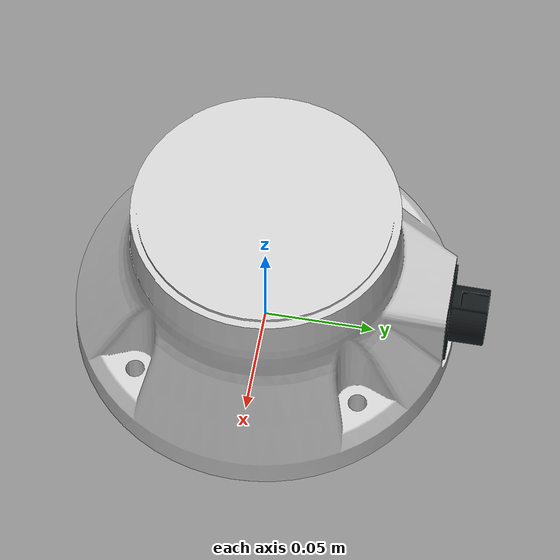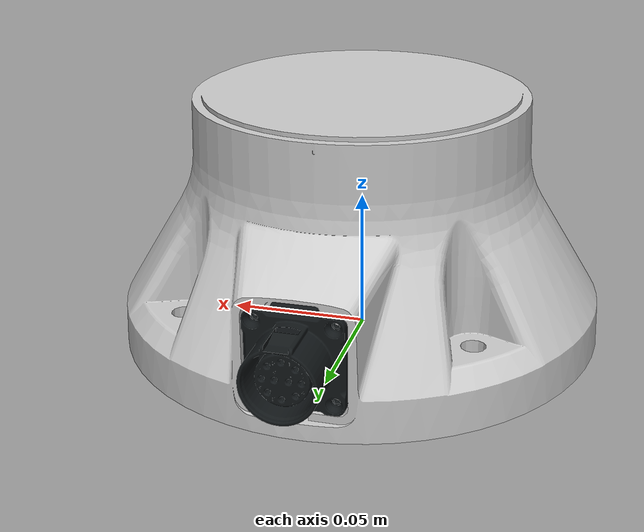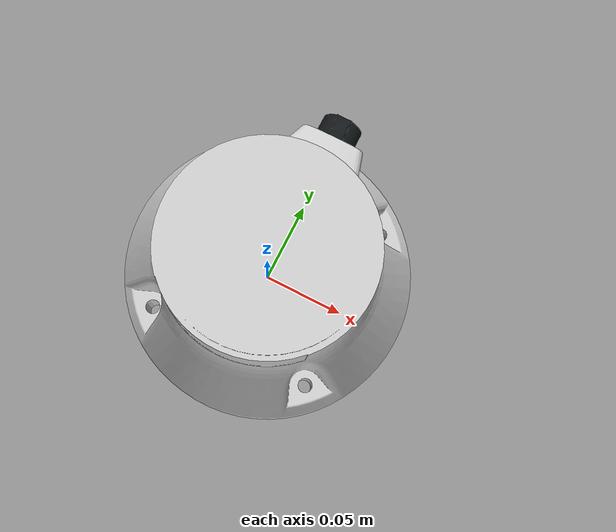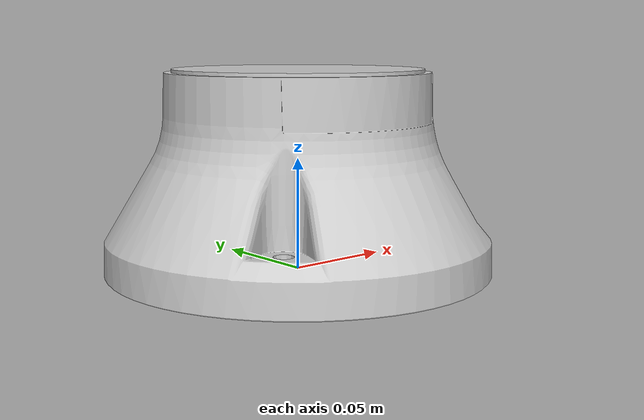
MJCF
<mujoco model="link0">
  <default>
    <default class="visual">
      <geom group="2" type="mesh" contype="0" conaffinity="0"/>
    </default>
    <default class="collision">
      <geom group="3" type="mesh"/>
    </default>
  </default>
  <asset>
    <material name="XID_Default_28FDDE125FCD40CB85B4287EFC819E04_shader" specular="0.5" shininess="0.5" rgba="0.8 0.8 0.8 1"/>
    <material name="XID_768588_2E571D5978994D3ABAE2BF078BC8457F_shader" specular="0.5" shininess="0.5" rgba="0.0722719 0.0908417 0.0975874 1"/>
    <material name="255,255,255" specular="0.5" shininess="0.5" rgba="0.8 0.8 0.8 1"/>
    <material name="0,153,255" specular="0.5" shininess="0.5" rgba="0.8 0.8 0.8 1"/>
    <mesh file="link0_0.obj"/>
    <mesh file="link0_1.obj"/>
    <mesh file="link0_2.obj"/>
    <mesh file="link0_3.obj"/>
  </asset>
  <worldbody>
    <body name="link0">
      <geom mesh="link0_0" material="0,153,255" class="visual"/>
      <geom mesh="link0_1" material="255,255,255" class="visual"/>
      <geom mesh="link0_2" material="XID_768588_2E571D5978994D3ABAE2BF078BC8457F_shader" class="visual"/>
      <geom mesh="link0_3" material="XID_Default_28FDDE125FCD40CB85B4287EFC819E04_shader" class="visual"/>
      <geom mesh="link0_0" class="collision"/>
      <geom mesh="link0_1" class="collision"/>
      <geom mesh="link0_2" class="collision"/>
      <geom mesh="link0_3" class="collision"/>
    </body>
  </worldbody>
</mujoco>
